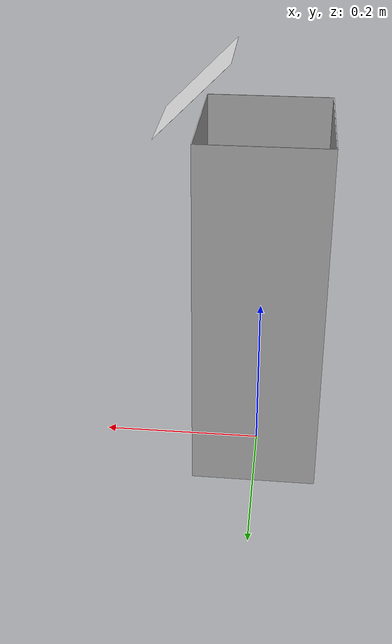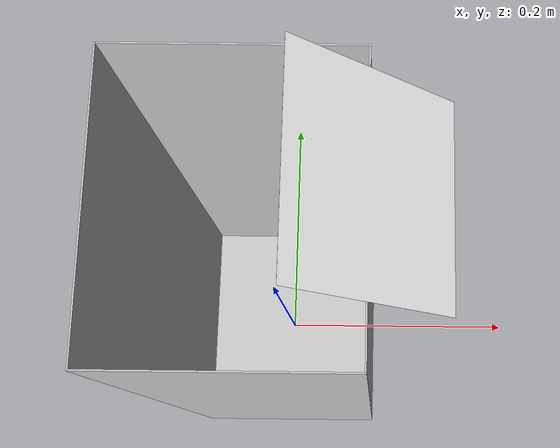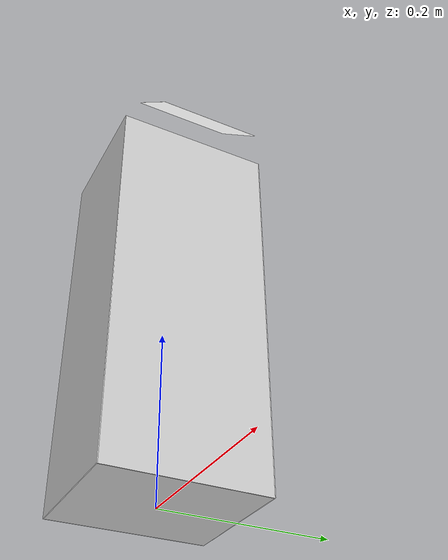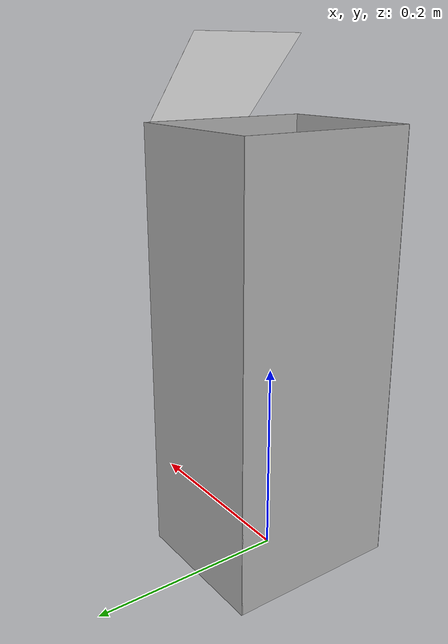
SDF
<?xml version="1.0" ?>
<sdf version="1.4">
    <model name='charge_station'>
      <link name='link'>
        <inertial>
          <pose>0.034 0 0.04 1.57 0 0</pose>
          <mass>0.3</mass>
          <inertia>
            <ixx>0.00058</ixx>
            <ixy>0</ixy>
            <ixz>0</ixz>
            <iyy>0.00058</iyy>
            <iyz>0</iyz>
            <izz>0.00019</izz>
          </inertia>
        </inertial>

        <visual name='marker_0015'>
	  <!-- -1.57:垂直  -1.3962:10度傾き、-0.785:45度、 0.000:水平 -->
          <pose>0.080 0 0.475 0 -0.785 3.1415</pose>
          <geometry>
            <box>
              <size>0.120 0.120 0.0001</size>
            </box>
          </geometry>
          <material>
            <name>Marker/0015_80</name>

            <ambient>1 1 1 1</ambient>  <!-- 周囲光 (真っ白) -->
            <diffuse>1 1 1 1</diffuse>  <!-- 反射光 (真っ白) -->
            <specular>0 0 0 1</specular>  <!-- 鏡面反射 (無し) -->
            <emissive>0 0 0 0</emissive>  <!-- 発光 (無し) -->

            <pbr>
              <metal>
                <albedo_map>model://marker/0015/textures/BchThin_Id0015_Size80.png</albedo_map>
                <max_anisotropy>16</max_anisotropy>
                <metalness>0.0</metalness> <!-- 金属感を排除 -->
              </metal>
            </pbr>
          </material>
        </visual>
        <visual name='box_front'>
          <pose>0.076 0 0.220 0 0 0</pose>
          <geometry>
            <box>
              <size>0.001 0.180 0.440</size>
            </box>
          </geometry>
          <material>
            <!-- hsr_color/white_transparency1 -->
            <name>white_transparency1</name>
            <ambient>1 1 1 1</ambient>
            <diffuse>0.8 0.8 0.8 1</diffuse>
            <specular>0.9 0.9 0.9 1</specular>
            <scene_blend>alpha_blend</scene_blend>
            <depth_write>off</depth_write>
          </material>
        </visual>
        <collision name='collision_box_front'>
          <pose>0.076 0 0.220 0 0 0</pose>
          <geometry>
            <box>
              <size>0.001 0.180 0.440</size>
            </box>
          </geometry>
          <max_contacts>10</max_contacts>
          <surface>
            <bounce>
              <restitution_coefficient>0.2</restitution_coefficient>
              <threshold>0</threshold>
            </bounce>
            <friction>
              <ode/>
            </friction>
            <contact>
              <ode>
                 <max_vel>10</max_vel>
              </ode>
            </contact>
          </surface>
        </collision>
        <visual name='box_back'>
          <pose>-0.076 0 0.220 0 0 0</pose>
          <geometry>
            <box>
              <size>0.001 0.180 0.440</size>
            </box>
          </geometry>
          <material>
            <!-- hsr_color/white_transparency1 -->
            <name>white_transparency1</name>
            <ambient>1 1 1 1</ambient>
            <diffuse>0.8 0.8 0.8 1</diffuse>
            <specular>0.9 0.9 0.9 1</specular>
            <scene_blend>alpha_blend</scene_blend>
            <depth_write>off</depth_write>
          </material>
        </visual>
        <collision name='collision_box_back'>
          <pose>-0.076 0 0.220 0 0 0</pose>
          <geometry>
            <box>
              <size>0.001 0.180 0.440</size>
            </box>
          </geometry>
          <max_contacts>10</max_contacts>
          <surface>
            <bounce>
              <restitution_coefficient>0.2</restitution_coefficient>
              <threshold>0</threshold>
            </bounce>
            <friction>
              <ode/>
            </friction>
            <contact>
              <ode>
                 <max_vel>10</max_vel>
              </ode>
            </contact>
          </surface>
        </collision>
        <visual name='box_right'>
          <pose>0 0.090 0.220 0 0 0</pose>
          <geometry>
            <box>
              <size>0.153 0.001 0.440</size>
            </box>
          </geometry>
          <material>
            <!-- hsr_color/white_transparency1 -->
            <name>white_transparency1</name>
            <ambient>1 1 1 1</ambient>
            <diffuse>0.8 0.8 0.8 1</diffuse>
            <specular>0.9 0.9 0.9 1</specular>
            <scene_blend>alpha_blend</scene_blend>
            <depth_write>off</depth_write>
          </material>
        </visual>
        <collision name='collision_box_right'>
          <pose>0 0.090 0.220 0 0 0</pose>
          <geometry>
            <box>
              <size>0.153 0.001 0.440</size>
            </box>
          </geometry>
          <max_contacts>10</max_contacts>
          <surface>
            <bounce>
              <restitution_coefficient>0.2</restitution_coefficient>
              <threshold>0</threshold>
            </bounce>
            <friction>
              <ode/>
            </friction>
            <contact>
              <ode>
                 <max_vel>10</max_vel>
              </ode>
            </contact>
          </surface>
        </collision>
        <visual name='box_left'>
          <pose>0 -0.090 0.220 0 0 0</pose>
          <geometry>
            <box>
              <size>0.153 0.001 0.440</size>
            </box>
          </geometry>
          <material>
            <!-- hsr_color/white_transparency1 -->
            <name>white_transparency1</name>
            <ambient>1 1 1 1</ambient>
            <diffuse>0.8 0.8 0.8 1</diffuse>
            <specular>0.9 0.9 0.9 1</specular>
            <scene_blend>alpha_blend</scene_blend>
            <depth_write>off</depth_write>
          </material>
        </visual>
        <collision name='collision_box_left'>
          <pose>0 -0.090 0.220 0 0 0</pose>
          <geometry>
            <box>
              <size>0.153 0.001 0.440</size>
            </box>
          </geometry>
          <max_contacts>10</max_contacts>
          <surface>
            <bounce>
              <restitution_coefficient>0.2</restitution_coefficient>
              <threshold>0</threshold>
            </bounce>
            <friction>
              <ode/>
            </friction>
            <contact>
              <ode>
                 <max_vel>10</max_vel>
              </ode>
            </contact>
          </surface>
        </collision>
        <visual name='box_bottom'>
          <pose>0 0 0.001 0 0 0</pose>
          <geometry>
            <box>
              <size>0.151 0.180 0.002</size>
            </box>
          </geometry>
          <material>
            <!-- hsr_color/white_transparency1 -->
            <name>white_transparency1</name>
            <ambient>1 1 1 1</ambient>
            <diffuse>0.8 0.8 0.8 1</diffuse>
            <specular>0.9 0.9 0.9 1</specular>
            <scene_blend>alpha_blend</scene_blend>
            <depth_write>off</depth_write>
          </material>
        </visual>
        <collision name='collision_box_bottom'>
          <pose>0 0 0.001 0 0 0</pose>
          <geometry>
            <box>
              <size>0.151 0.180 0.002</size>
            </box>
          </geometry>
          <max_contacts>10</max_contacts>
          <surface>
            <bounce>
              <restitution_coefficient>0.2</restitution_coefficient>
              <threshold>0</threshold>
            </bounce>
            <friction>
              <ode/>
            </friction>
            <contact>
              <ode>
                 <max_vel>10</max_vel>
              </ode>
            </contact>
          </surface>
        </collision>
        <velocity_decay>
          <linear>0</linear>
          <angular>0</angular>
        </velocity_decay>
        <self_collide>0</self_collide>
        <kinematic>0</kinematic>
        <gravity>1</gravity>
      </link>
      <static>0</static>
    </model>
</sdf>
